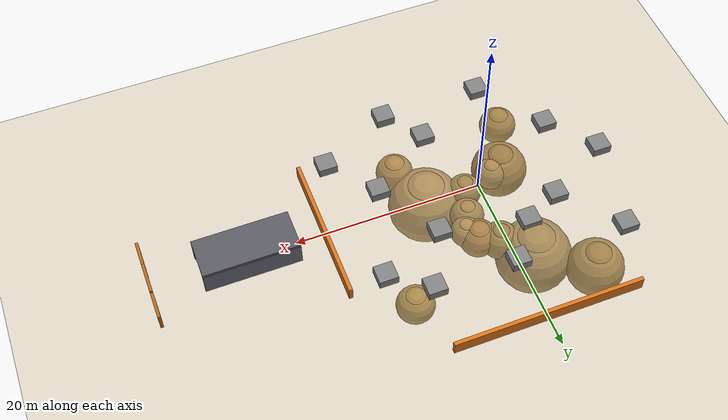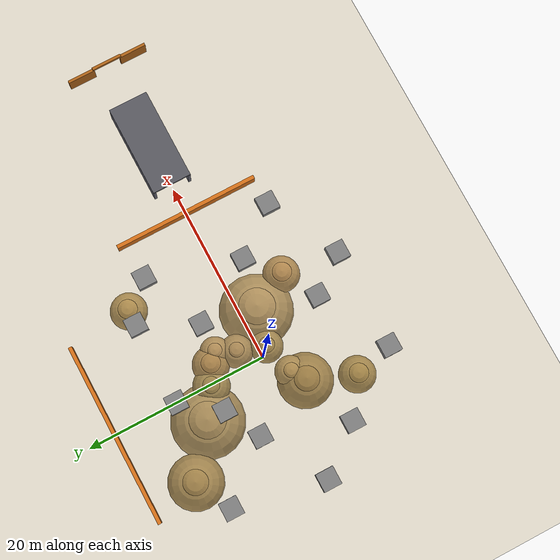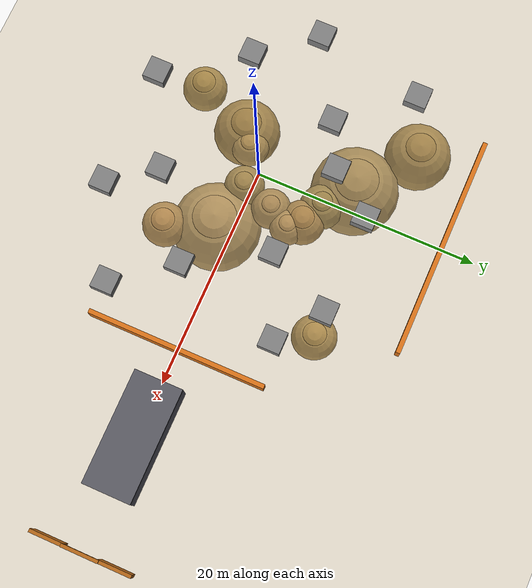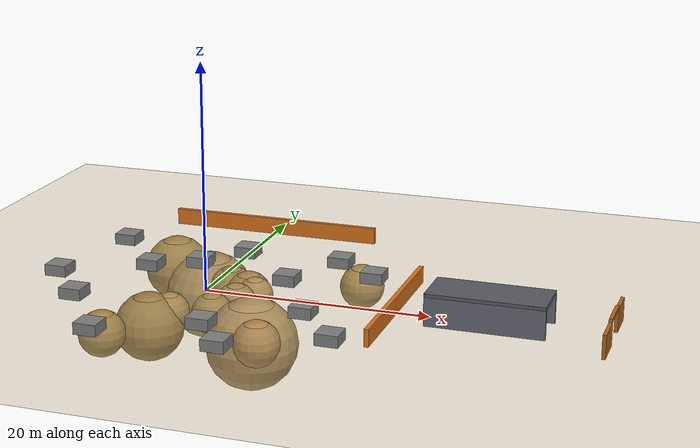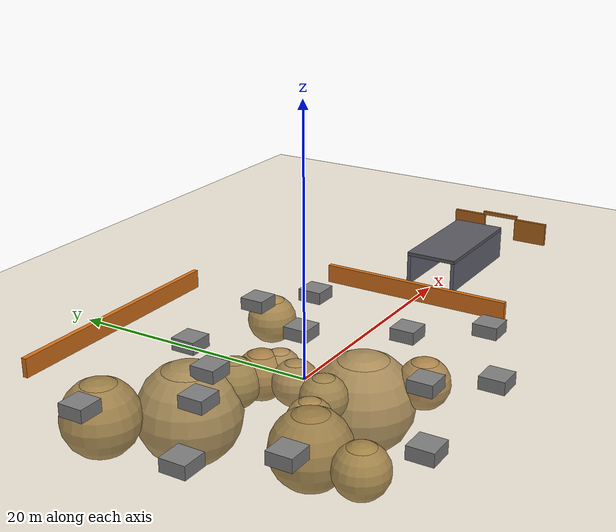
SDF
<?xml version="1.0"?>
<sdf version="1.8">
  <world name="leo_obstacles">

    <!-- ── Physics ─────────────────────────────────────────────────── -->
    <physics name="1ms" type="ignored">
      <max_step_size>0.001</max_step_size>
      <real_time_factor>1.0</real_time_factor>
    </physics>

    <!-- ── Plugins ──────────────────────────────────────────────────── -->
    <plugin filename="ignition-gazebo-physics-system"
            name="ignition::gazebo::systems::Physics"/>
    <plugin filename="ignition-gazebo-sensors-system"
            name="ignition::gazebo::systems::Sensors">
      <render_engine>ogre2</render_engine>
    </plugin>
    <plugin filename="ignition-gazebo-scene-broadcaster-system"
            name="ignition::gazebo::systems::SceneBroadcaster"/>
    <plugin filename="ignition-gazebo-user-commands-system"
            name="ignition::gazebo::systems::UserCommands"/>
    <plugin filename="gz-sim-imu-system"
            name="gz::sim::systems::Imu"/>
    <plugin filename="ignition-gazebo-navsat-system"
            name="ignition::gazebo::systems::NavSat"/>

    <!-- ── GPS datum: Ankara ─────────────────────────────────────────── -->
    <spherical_coordinates>
      <surface_model>EARTH_WGS84</surface_model>
      <world_frame_orientation>ENU</world_frame_orientation>
      <latitude_deg>39.925018</latitude_deg>
      <longitude_deg>32.836956</longitude_deg>
      <elevation>890</elevation>
      <heading_deg>0</heading_deg>
    </spherical_coordinates>

    <!-- ── Lighting ─────────────────────────────────────────────────── -->
    <light name="sun" type="directional">
      <cast_shadows>true</cast_shadows>
      <pose>0 0 10 0 0 0</pose>
      <diffuse>0.8 0.8 0.8 1</diffuse>
      <specular>0.2 0.2 0.2 1</specular>
      <attenuation>
        <range>1000</range>
        <constant>0.9</constant>
        <linear>0.01</linear>
        <quadratic>0.001</quadratic>
      </attenuation>
      <direction>-0.5 0.1 -0.9</direction>
    </light>

    <!-- ── Ground plane (kum/toprak rengi) ──────────────────────────── -->
    <model name="ground_plane">
      <static>true</static>
      <link name="link">
        <collision name="collision">
          <geometry>
            <plane>
              <normal>0 0 1</normal>
              <size>100 100</size>
            </plane>
          </geometry>
          <surface>
            <friction>
              <ode><mu>0.8</mu><mu2>0.8</mu2></ode>
            </friction>
          </surface>
        </collision>
        <visual name="visual">
          <geometry>
            <plane>
              <normal>0 0 1</normal>
              <size>100 100</size>
            </plane>
          </geometry>
          <material>
            <!-- Kum / çöl toprağı rengi -->
            <ambient>0.60 0.50 0.35 1</ambient>
            <diffuse>0.72 0.62 0.42 1</diffuse>
            <specular>0.05 0.05 0.04 1</specular>
          </material>
        </visual>
      </link>
    </model>

    <model name="box_01"><static>true</static><pose>6 4 0.5 0 0 0</pose>
      <link name="link">
        <collision name="c"><geometry><box><size>2 2 1</size></box></geometry></collision>
        <visual name="v"><geometry><box><size>2 2 1</size></box></geometry>
          <material><ambient>0.5 0.5 0.5 1</ambient><diffuse>0.5 0.5 0.5 1</diffuse></material>
        </visual>
      </link>
    </model>

    <model name="box_02"><static>true</static><pose>-7 4 0.5 0 0 0</pose>
      <link name="link">
        <collision name="c"><geometry><box><size>2 2 1</size></box></geometry></collision>
        <visual name="v"><geometry><box><size>2 2 1</size></box></geometry>
          <material><ambient>0.5 0.5 0.5 1</ambient><diffuse>0.5 0.5 0.5 1</diffuse></material>
        </visual>
      </link>
    </model>

    <model name="box_03"><static>true</static><pose>10 -3 0.5 0 0 0</pose>
      <link name="link">
        <collision name="c"><geometry><box><size>2 2 1</size></box></geometry></collision>
        <visual name="v"><geometry><box><size>2 2 1</size></box></geometry>
          <material><ambient>0.5 0.5 0.5 1</ambient><diffuse>0.5 0.5 0.5 1</diffuse></material>
        </visual>
      </link>
    </model>

    <model name="box_04"><static>true</static><pose>-10 -5 0.5 0 0 0</pose>
      <link name="link">
        <collision name="c"><geometry><box><size>2 2 1</size></box></geometry></collision>
        <visual name="v"><geometry><box><size>2 2 1</size></box></geometry>
          <material><ambient>0.5 0.5 0.5 1</ambient><diffuse>0.5 0.5 0.5 1</diffuse></material>
        </visual>
      </link>
    </model>

    <model name="box_05"><static>true</static><pose>3 -8 0.5 0 0 0</pose>
      <link name="link">
        <collision name="c"><geometry><box><size>2 2 1</size></box></geometry></collision>
        <visual name="v"><geometry><box><size>2 2 1</size></box></geometry>
          <material><ambient>0.5 0.5 0.5 1</ambient><diffuse>0.5 0.5 0.5 1</diffuse></material>
        </visual>
      </link>
    </model>

    <model name="box_06"><static>true</static><pose>9 10 0.5 0 0 0</pose>
      <link name="link">
        <collision name="c"><geometry><box><size>2 2 1</size></box></geometry></collision>
        <visual name="v"><geometry><box><size>2 2 1</size></box></geometry>
          <material><ambient>0.5 0.5 0.5 1</ambient><diffuse>0.5 0.5 0.5 1</diffuse></material>
        </visual>
      </link>
    </model>

    <model name="box_07"><static>true</static><pose>-5 -12 0.5 0 0 0</pose>
      <link name="link">
        <collision name="c"><geometry><box><size>2 2 1</size></box></geometry></collision>
        <visual name="v"><geometry><box><size>2 2 1</size></box></geometry>
          <material><ambient>0.5 0.5 0.5 1</ambient><diffuse>0.5 0.5 0.5 1</diffuse></material>
        </visual>
      </link>
    </model>

    <model name="box_08"><static>true</static><pose>13 7 0.5 0 0 0</pose>
      <link name="link">
        <collision name="c"><geometry><box><size>2 2 1</size></box></geometry></collision>
        <visual name="v"><geometry><box><size>2 2 1</size></box></geometry>
          <material><ambient>0.5 0.5 0.5 1</ambient><diffuse>0.5 0.5 0.5 1</diffuse></material>
        </visual>
      </link>
    </model>

    <model name="box_09"><static>true</static><pose>-12 10 0.5 0 0 0</pose>
      <link name="link">
        <collision name="c"><geometry><box><size>2 2 1</size></box></geometry></collision>
        <visual name="v"><geometry><box><size>2 2 1</size></box></geometry>
          <material><ambient>0.5 0.5 0.5 1</ambient><diffuse>0.5 0.5 0.5 1</diffuse></material>
        </visual>
      </link>
    </model>

    <model name="box_10"><static>true</static><pose>0 10 0.5 0 0 0</pose>
      <link name="link">
        <collision name="c"><geometry><box><size>2 2 1</size></box></geometry></collision>
        <visual name="v"><geometry><box><size>2 2 1</size></box></geometry>
          <material><ambient>0.5 0.5 0.5 1</ambient><diffuse>0.5 0.5 0.5 1</diffuse></material>
        </visual>
      </link>
    </model>

    <model name="box_11"><static>true</static><pose>-3 6 0.5 0 0 0</pose>
      <link name="link">
        <collision name="c"><geometry><box><size>2 2 1</size></box></geometry></collision>
        <visual name="v"><geometry><box><size>2 2 1</size></box></geometry>
          <material><ambient>0.5 0.5 0.5 1</ambient><diffuse>0.5 0.5 0.5 1</diffuse></material>
        </visual>
      </link>
    </model>

    <model name="box_12"><static>true</static><pose>6 -12 0.5 0 0 0</pose>
      <link name="link">
        <collision name="c"><geometry><box><size>2 2 1</size></box></geometry></collision>
        <visual name="v"><geometry><box><size>2 2 1</size></box></geometry>
          <material><ambient>0.5 0.5 0.5 1</ambient><diffuse>0.5 0.5 0.5 1</diffuse></material>
        </visual>
      </link>
    </model>

    <model name="box_13"><static>true</static><pose>-14 0 0.5 0 0 0</pose>
      <link name="link">
        <collision name="c"><geometry><box><size>2 2 1</size></box></geometry></collision>
        <visual name="v"><geometry><box><size>2 2 1</size></box></geometry>
          <material><ambient>0.5 0.5 0.5 1</ambient><diffuse>0.5 0.5 0.5 1</diffuse></material>
        </visual>
      </link>
    </model>

    <model name="box_14"><static>true</static><pose>14 -8 0.5 0 0 0</pose>
      <link name="link">
        <collision name="c"><geometry><box><size>2 2 1</size></box></geometry></collision>
        <visual name="v"><geometry><box><size>2 2 1</size></box></geometry>
          <material><ambient>0.5 0.5 0.5 1</ambient><diffuse>0.5 0.5 0.5 1</diffuse></material>
        </visual>
      </link>
    </model>

    <!-- North wall: x-axis aligned, y=17, 20m long × 0.4m wide × 1.5m tall -->
    <model name="wall_north">
      <static>true</static>
      <pose>0 17 0.75 0 0 0</pose>
      <link name="link">
        <collision name="c">
          <geometry><box><size>20 0.4 1.5</size></box></geometry>
        </collision>
        <visual name="v">
          <geometry><box><size>20 0.4 1.5</size></box></geometry>
          <material><ambient>0.85 0.45 0.1 1</ambient><diffuse>0.85 0.45 0.1 1</diffuse></material>
        </visual>
      </link>
    </model>

    <!-- East wall: y-axis aligned, x=17, 16m long × 0.4m wide × 1.5m tall -->
    <model name="wall_east">
      <static>true</static>
      <pose>17 0 0.75 0 0 1.5708</pose>
      <link name="link">
        <collision name="c">
          <geometry><box><size>16 0.4 1.5</size></box></geometry>
        </collision>
        <visual name="v">
          <geometry><box><size>16 0.4 1.5</size></box></geometry>
          <material><ambient>0.85 0.45 0.1 1</ambient><diffuse>0.85 0.45 0.1 1</diffuse></material>
        </visual>
      </link>
    </model>

    <!-- ── Rota üzeri bump'lar (robot bunlara tırmanmak ZORUNDA) ────── -->

    <!-- WP1 rotası üzerinde (0,0)→(+4,+4) arası -->
    <model name="bump_route_01">
      <static>true</static>
      <pose>2 2 -1.65 0 0 0</pose>
      <link name="link">
        <collision name="c">
          <geometry><sphere><radius>1.8</radius></sphere></geometry>
          <surface><friction><ode><mu>0.9</mu></ode></friction></surface>
        </collision>
        <visual name="v">
          <geometry><sphere><radius>1.8</radius></sphere></geometry>
          <material><ambient>0.55 0.42 0.25 1</ambient><diffuse>0.65 0.52 0.32 1</diffuse></material>
        </visual>
      </link>
    </model>

    <!-- WP2 rotası üzerinde, (+4,+4)→(-4,+8) arası -->
    <model name="bump_route_02">
      <static>true</static>
      <pose>0 6 -1.82 0 0 0</pose>
      <link name="link">
        <collision name="c">
          <geometry><sphere><radius>2.0</radius></sphere></geometry>
          <surface><friction><ode><mu>0.9</mu></ode></friction></surface>
        </collision>
        <visual name="v">
          <geometry><sphere><radius>2.0</radius></sphere></geometry>
          <material><ambient>0.50 0.40 0.22 1</ambient><diffuse>0.60 0.50 0.28 1</diffuse></material>
        </visual>
      </link>
    </model>

    <!-- WP3 rotası üzerinde (-4,+8)→(+8,+2) arası -->
    <model name="bump_route_03">
      <static>true</static>
      <pose>3 4 -1.45 0 0 0</pose>
      <link name="link">
        <collision name="c">
          <geometry><sphere><radius>1.6</radius></sphere></geometry>
          <surface><friction><ode><mu>0.9</mu></ode></friction></surface>
        </collision>
        <visual name="v">
          <geometry><sphere><radius>1.6</radius></sphere></geometry>
          <material><ambient>0.58 0.44 0.26 1</ambient><diffuse>0.68 0.54 0.33 1</diffuse></material>
        </visual>
      </link>
    </model>

    <!-- WP4 rotası üzerinde (+8,+2)→(-5,-4) arası -->
    <model name="bump_route_04">
      <static>true</static>
      <pose>1 -1 -1.63 0 0 0</pose>
      <link name="link">
        <collision name="c">
          <geometry><sphere><radius>1.8</radius></sphere></geometry>
          <surface><friction><ode><mu>0.9</mu></ode></friction></surface>
        </collision>
        <visual name="v">
          <geometry><sphere><radius>1.8</radius></sphere></geometry>
          <material><ambient>0.52 0.41 0.23 1</ambient><diffuse>0.62 0.51 0.29 1</diffuse></material>
        </visual>
      </link>
    </model>

    <!-- WP5 dönüş rotası üzerinde (-5,-4)→(0,0) arası -->
    <model name="bump_route_05">
      <static>true</static>
      <pose>-2.5 -2 -1.54 0 0 0</pose>
      <link name="link">
        <collision name="c">
          <geometry><sphere><radius>1.7</radius></sphere></geometry>
          <surface><friction><ode><mu>0.9</mu></ode></friction></surface>
        </collision>
        <visual name="v">
          <geometry><sphere><radius>1.7</radius></sphere></geometry>
          <material><ambient>0.56 0.43 0.24 1</ambient><diffuse>0.66 0.53 0.30 1</diffuse></material>
        </visual>
      </link>
    </model>

    <!-- ── Çevresel engebeler (arazi dalgası) ──────────────────────── -->

    <model name="bump_01">
      <static>true</static>
      <pose>2 5 -1.75 0 0 0</pose>
      <link name="link">
        <collision name="c">
          <geometry><sphere><radius>2.0</radius></sphere></geometry>
          <surface><friction><ode><mu>0.8</mu></ode></friction></surface>
        </collision>
        <visual name="v">
          <geometry><sphere><radius>2.0</radius></sphere></geometry>
          <material><ambient>0.55 0.40 0.22 1</ambient><diffuse>0.65 0.50 0.28 1</diffuse></material>
        </visual>
      </link>
    </model>

    <model name="bump_02">
      <static>true</static>
      <pose>-4 -3 -2.7 0 0 0</pose>
      <link name="link">
        <collision name="c">
          <geometry><sphere><radius>3.0</radius></sphere></geometry>
          <surface><friction><ode><mu>0.8</mu></ode></friction></surface>
        </collision>
        <visual name="v">
          <geometry><sphere><radius>3.0</radius></sphere></geometry>
          <material><ambient>0.50 0.38 0.20 1</ambient><diffuse>0.60 0.48 0.26 1</diffuse></material>
        </visual>
      </link>
    </model>

    <model name="bump_03">
      <static>true</static>
      <pose>7 -6 -1.75 0 0 0</pose>
      <link name="link">
        <collision name="c">
          <geometry><sphere><radius>2.0</radius></sphere></geometry>
          <surface><friction><ode><mu>0.8</mu></ode></friction></surface>
        </collision>
        <visual name="v">
          <geometry><sphere><radius>2.0</radius></sphere></geometry>
          <material><ambient>0.58 0.42 0.24 1</ambient><diffuse>0.68 0.52 0.30 1</diffuse></material>
        </visual>
      </link>
    </model>

    <model name="bump_04">
      <static>true</static>
      <pose>-8 12 -2.7 0 0 0</pose>
      <link name="link">
        <collision name="c">
          <geometry><sphere><radius>3.0</radius></sphere></geometry>
          <surface><friction><ode><mu>0.8</mu></ode></friction></surface>
        </collision>
        <visual name="v">
          <geometry><sphere><radius>3.0</radius></sphere></geometry>
          <material><ambient>0.52 0.40 0.22 1</ambient><diffuse>0.62 0.50 0.28 1</diffuse></material>
        </visual>
      </link>
    </model>

    <model name="bump_05">
      <static>true</static>
      <pose>11 10 -1.75 0 0 0</pose>
      <link name="link">
        <collision name="c">
          <geometry><sphere><radius>2.0</radius></sphere></geometry>
          <surface><friction><ode><mu>0.8</mu></ode></friction></surface>
        </collision>
        <visual name="v">
          <geometry><sphere><radius>2.0</radius></sphere></geometry>
          <material><ambient>0.56 0.43 0.23 1</ambient><diffuse>0.66 0.53 0.29 1</diffuse></material>
        </visual>
      </link>
    </model>

    <model name="bump_06">
      <static>true</static>
      <pose>-6 -8 -1.75 0 0 0</pose>
      <link name="link">
        <collision name="c">
          <geometry><sphere><radius>2.0</radius></sphere></geometry>
          <surface><friction><ode><mu>0.8</mu></ode></friction></surface>
        </collision>
        <visual name="v">
          <geometry><sphere><radius>2.0</radius></sphere></geometry>
          <material><ambient>0.53 0.41 0.21 1</ambient><diffuse>0.63 0.51 0.27 1</diffuse></material>
        </visual>
      </link>
    </model>

    <!-- ── Geniş alçak dalgalar (tümsek) ──────────────────────────── -->
    <model name="bump_wide_01">
      <static>true</static>
      <pose>5 -2 -3.5 0 0 0</pose>
      <link name="link">
        <collision name="c">
          <geometry><sphere><radius>4.0</radius></sphere></geometry>
          <surface><friction><ode><mu>0.8</mu></ode></friction></surface>
        </collision>
        <visual name="v">
          <geometry><sphere><radius>4.0</radius></sphere></geometry>
          <material><ambient>0.57 0.45 0.28 1</ambient><diffuse>0.67 0.55 0.35 1</diffuse></material>
        </visual>
      </link>
    </model>

    <model name="bump_wide_02">
      <static>true</static>
      <pose>-3 8 -3.5 0 0 0</pose>
      <link name="link">
        <collision name="c">
          <geometry><sphere><radius>4.0</radius></sphere></geometry>
          <surface><friction><ode><mu>0.8</mu></ode></friction></surface>
        </collision>
        <visual name="v">
          <geometry><sphere><radius>4.0</radius></sphere></geometry>
          <material><ambient>0.54 0.43 0.26 1</ambient><diffuse>0.64 0.53 0.33 1</diffuse></material>
        </visual>
      </link>
    </model>

    <!-- Tünel sol duvarı (y=+2.0'de, 10m uzun) -->
    <model name="tunnel_wall_left">
      <static>true</static>
      <pose>25 2.0 1.25 0 0 0</pose>
      <link name="link">
        <collision name="c">
          <geometry><box><size>10 0.3 2.5</size></box></geometry>
        </collision>
        <visual name="v">
          <geometry><box><size>10 0.3 2.5</size></box></geometry>
          <material>
            <ambient>0.35 0.35 0.38 1</ambient>
            <diffuse>0.40 0.40 0.45 1</diffuse>
          </material>
        </visual>
      </link>
    </model>

    <!-- Tünel sağ duvarı (y=-2.0'de, 10m uzun) -->
    <model name="tunnel_wall_right">
      <static>true</static>
      <pose>25 -2.0 1.25 0 0 0</pose>
      <link name="link">
        <collision name="c">
          <geometry><box><size>10 0.3 2.5</size></box></geometry>
        </collision>
        <visual name="v">
          <geometry><box><size>10 0.3 2.5</size></box></geometry>
          <material>
            <ambient>0.35 0.35 0.38 1</ambient>
            <diffuse>0.40 0.40 0.45 1</diffuse>
          </material>
        </visual>
      </link>
    </model>

    <!-- Tünel tavan (GPS sinyalini tamamen keser) -->
    <model name="tunnel_roof">
      <static>true</static>
      <pose>25 0 2.65 0 0 0</pose>
      <link name="link">
        <collision name="c">
          <geometry><box><size>10 4.3 0.3</size></box></geometry>
        </collision>
        <visual name="v">
          <geometry><box><size>10 4.3 0.3</size></box></geometry>
          <material>
            <ambient>0.30 0.30 0.33 1</ambient>
            <diffuse>0.35 0.35 0.38 1</diffuse>
          </material>
        </visual>
      </link>
    </model>

    <!-- Kapı sol pervazı (y=+1.5'ten y=+4'e kadar) -->
    <model name="door_frame_left">
      <static>true</static>
      <pose>35 3.0 1.0 0 0 0</pose>
      <link name="link">
        <collision name="c">
          <geometry><box><size>0.3 3.0 2.0</size></box></geometry>
        </collision>
        <visual name="v">
          <geometry><box><size>0.3 3.0 2.0</size></box></geometry>
          <material>
            <ambient>0.6 0.35 0.1 1</ambient>
            <diffuse>0.7 0.40 0.1 1</diffuse>
          </material>
        </visual>
      </link>
    </model>

    <!-- Kapı sağ pervazı (y=-1.5'ten y=-4'e kadar) -->
    <model name="door_frame_right">
      <static>true</static>
      <pose>35 -3.0 1.0 0 0 0</pose>
      <link name="link">
        <collision name="c">
          <geometry><box><size>0.3 3.0 2.0</size></box></geometry>
        </collision>
        <visual name="v">
          <geometry><box><size>0.3 3.0 2.0</size></box></geometry>
          <material>
            <ambient>0.6 0.35 0.1 1</ambient>
            <diffuse>0.7 0.40 0.1 1</diffuse>
          </material>
        </visual>
      </link>
    </model>

    <!-- Kapı üst kirişi (soldaki ve sağdaki pervazı birleştirir) -->
    <model name="door_top_beam">
      <static>true</static>
      <pose>35 0 2.15 0 0 0</pose>
      <link name="link">
        <collision name="c">
          <geometry><box><size>0.3 3.3 0.3</size></box></geometry>
        </collision>
        <visual name="v">
          <geometry><box><size>0.3 3.3 0.3</size></box></geometry>
          <material>
            <ambient>0.6 0.35 0.1 1</ambient>
            <diffuse>0.7 0.40 0.1 1</diffuse>
          </material>
        </visual>
      </link>
    </model>

  </world>
</sdf>
